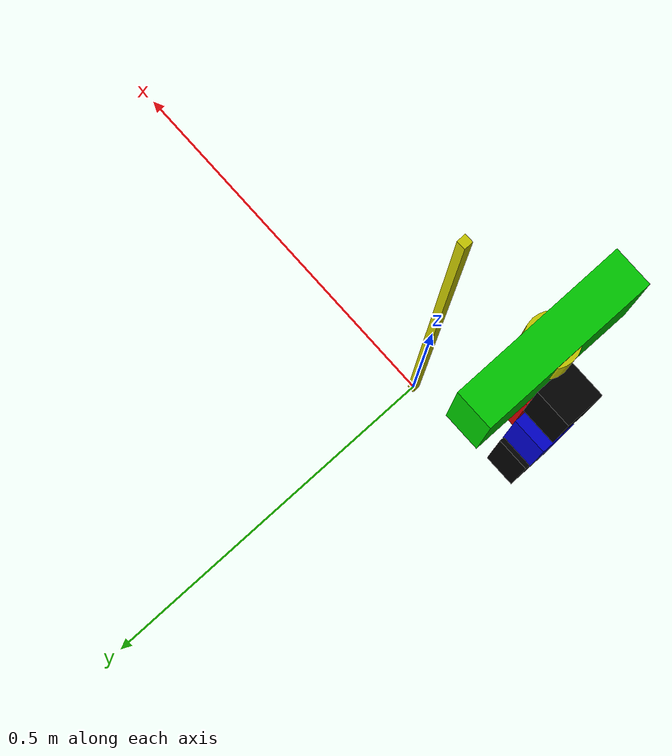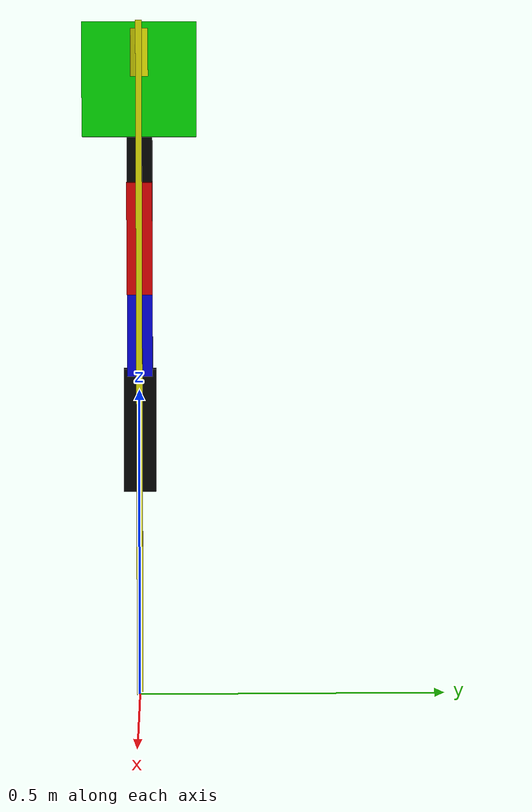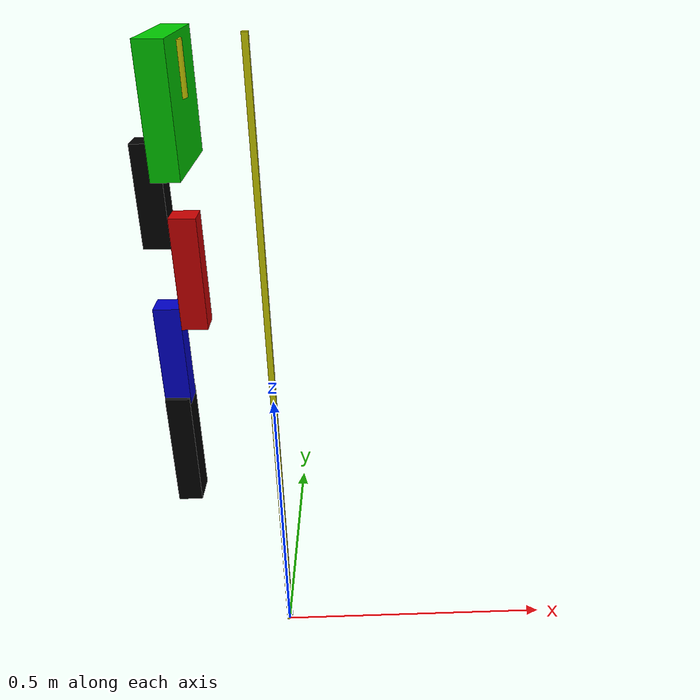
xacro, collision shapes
<?xml version="1.0"?>
<robot name="arm" xmlns:xacro="http://ros.org/wiki/xacro">

<xacro:property name="namespace" value="$(arg namespace)" />

<xacro:include filename="$(find rotors_description)/urdf/component_snippets.xacro" />

<xacro:property name="width" value="42.5e-3" />

<gazebo>
  <plugin name="gazebo_ros_control" filename="libgazebo_ros_control.so">
    <robotNamespace>/arm</robotNamespace>
    <robotSimType>gazebo_ros_control/DefaultRobotHWSim</robotSimType>
  </plugin>
</gazebo>

<xacro:property name="joint_radius" value="24e-3" />
<xacro:property name="PI" value="3.1415926535897931"/>
<xacro:property name="friction" value="1e-5" />
<xacro:property name="damping" value="2e-1" />

<material name="blue">
    <color rgba="0 0 0.8 1"/>
</material>

<material name="green">
    <color rgba="0 0.8 0 1"/>
</material>

<material name="yellow">
    <color rgba="0.8 0.8 0 1"/>
</material>

<material name="black">
    <color rgba="0 0 0 1"/>
</material>

<material name="red">
    <color rgba="0.8 0 0 1"/>
</material>

<link name="world">
	<origin rpy="0 0 0" xyz="0 0 0"/>
</link>

<joint name="fixed_joint" type="fixed">
	<parent link="world"/>
	<child link="fixed_frame"/>
	<origin rpy="0 3.1416 0" xyz="0 0 1.1"/>
</joint>

<link name="fixed_frame">

  	<visual>
		<origin rpy="0 0 0" xyz="0 0 0.55"/>
		<geometry>
		 <box size="0.01 0.01 1.1"/>
  	</geometry>
		<material name = "yellow"/>
	  </visual>

    <collision>
      <origin rpy="0 0 0" xyz="0 0 0.55"/>
      <geometry>
        <box size="0.01 0.01 1.1"/>
      </geometry>
    </collision>

    <inertial>
      <origin rpy="0 0 0" xyz="0 0 0.55"/>
      <mass value="12"/>
      <inertia
        ixx="1.2101" ixy="0.0" ixz="0.0"
        iyy="1.2101" iyz="0.0"
        izz="0.0001"/>
    </inertial>

</link>

<joint name="fixed_joint_right" type="fixed">
	<parent link="fixed_frame"/>
	<child link="base_link_right"/>
	<origin rpy="0 0 0" xyz="0.11475 0 0.009"/>
</joint>

<link name="base_link_right">
	<visual>
		<origin rpy="0 0 0" xyz="0 0 0"/>
		<geometry>
		<mesh filename="package://rotors_description/meshes/arm/base_link.stl" scale="0.001 0.001 0.001"/>
		</geometry>
		<material name = "yellow"/>
	</visual>

    <collision>
      <origin xyz="0 0 39.875e-3" rpy="0 0 0"/>
      <geometry>
        <cylinder radius="26.05e-3" length="79.75e-3"/>
      </geometry>
    </collision>

    <inertial>
      <origin xyz="-2.2068363e-3 0 3.1955704e-3" rpy="0 0 0"/>
      <mass value="0.396"/>
      <inertia
        ixx="8.1358422e-4" ixy="0.0" ixz="0.0"
        iyy="3.1455842e-4" iyz="0.0"
        izz="9.0317049e-4"/>
    </inertial>

</link>

 <joint name="Joint_shoulder_right" type="continuous">
 	<axis xyz="0 0 1"/>
	<parent link="base_link_right"/>
	<child link="Link_shoulder_right"/>
	<origin xyz="0 0 79.75e-3"/>
  <dynamics damping="${damping}" friction="${friction}"/>
</joint>

<link name="Link_shoulder_right">
	<visual>
		<origin rpy="0 0 0" xyz="0 0 0"/>
		<geometry>
		<mesh filename="package://rotors_description/meshes/arm/j0.stl" scale="0.001 0.001 0.001"/>
		</geometry>
		<material name = "green"/>
	</visual>

    <collision>
      <origin xyz="0 0 4.5368422e-3" rpy="0 0 0"/>
      <geometry>
        <box size="${width} 189e-3 189e-3"/>
      </geometry>
    </collision>

    <inertial>
      <origin xyz="0 0 4.5368422e-3" rpy="0 0 0"/>
      <mass value="1.586"/>
        <inertia
	  ixx="${1.586 / 12.0 * (189e-3*189e-3 + 189e-3*189e-3)}" ixy="0.0" ixz="0.0"
	  iyy="${1.586 / 12.0 * (width*width + 189e-3*189e-3)}" iyz="0.0"
	  izz="${1.586 / 12.0 * (width*width + 189e-3*189e-3)}"/>
    </inertial>
</link>

<joint name="Joint_1_right" type="continuous">
	<axis xyz="1 0 0"/>
	<parent link="Link_shoulder_right"/>
	<child link="Link_one_right"/>
	<origin xyz="${width} 0 85.144e-3"/>
  <dynamics damping="${damping}" friction="${friction}"/>
</joint>

<link name="Link_one_right">
	<visual>
		<origin rpy="0 0 0" xyz="0 0 24e-3"/>
		<geometry>
		<mesh filename="package://rotors_description/meshes/arm/j1.stl" scale="0.001 0.001 0.001"/>
		</geometry>
		<material name = "black"/>
	</visual>

    <collision>
      <origin xyz="0 0 56.5e-3" rpy="0 0 0"/>
      <geometry>
        <box size="${width} ${width} 161e-3"/>
      </geometry>
    </collision>

    <inertial>
      <origin xyz="0 0 5.65e-2" rpy=" 0 0 0"/>
      <mass value="0.139"/>
        <inertia
	  ixx="${0.139 / 12.0 * (width*width + 161e-3*161e-3)}" ixy="0.0" ixz="0.0"
	  iyy="${0.139 / 12.0 * (161e-3*161e-3 + width*width)}" iyz="0.0"
	  izz="${0.139 / 12.0 * (width*width + width*width)}"/>
    </inertial>
</link>

<joint name="Joint_2_right" type="continuous">
	<axis xyz="1 0 0"/>
	<parent link="Link_one_right"/>
	<child link="Link_two_right"/>
	<origin xyz="-${width} 0 0.113"/>
  <dynamics damping="${damping}" friction="${friction}"/>
</joint>

<link name="Link_two_right">
	<visual>
		<origin rpy="0 0 0" xyz="0 0 24e-3"/>
		<geometry>
		<mesh filename="package://rotors_description/meshes/arm/j2.stl" scale="0.001 0.001 0.001"/>
		</geometry>
		<material name = "red"/>
	</visual>

    <collision>
      <origin xyz="0 0 69e-3" rpy="0 0 0"/>
      <geometry>
        <box size="${width} ${width} 186e-3"/>
      </geometry>
    </collision>

        <inertial>
      <origin xyz="0 0 6.9e-2" rpy="0 0 0"/>
      <mass value="0.154"/>
        <inertia
	  ixx="${0.154 / 12.0 * (width*width + 186e-3*186e-3)}" ixy="0.0" ixz="0.0"
	  iyy="${0.154 / 12.0 * (186e-3*186e-3 + width*width)}" iyz="0.0"
	  izz="${0.154 / 12.0 * (width*width + width*width)}"/>
    </inertial>
</link>

<joint name="Joint_3_right" type="continuous">
	<axis xyz="1 0 0"/>
	<parent link="Link_two_right"/>
	<child link="Link_three_right"/>
	<origin xyz="${width} 0 0.138"/>
  <dynamics damping="${damping}" friction="${friction}"/>
</joint>

<link name="Link_three_right">
	<visual>
		<origin rpy="0 0 0" xyz="0 0 24e-3"/>
		<geometry>
		<mesh filename="package://rotors_description/meshes/arm/j3.stl" scale="0.001 0.001 0.001"/>
		</geometry>
		<material name = "blue"/>
	</visual>

    <collision>
      <origin xyz="0 0 75.1e-3" rpy="0 0 0"/>
      <geometry>
        <box size="${width}  ${width}  175e-3"/>
      </geometry>
    </collision>

    <inertial>
      <origin xyz="0 0 63e-3" rpy="0 0 0"/>
      <mass value="0.207"/>
        <inertia
	  ixx="${0.207 / 12.0 * (width*width + 175e-3*175e-3)}" ixy="0.0" ixz="0.0"
	  iyy="${0.207 / 12.0 * (175e-3*175e-3 + width*width)}" iyz="0.0"
	  izz="${0.207 / 12.0 * (width*width + width*width)}"/>
    </inertial>
</link>

<joint name="Joint_wrist_right" type="continuous">
	<axis xyz="0 0 1"/>
	<parent link="Link_three_right"/>
	<child link="Link_hand_right"/>
	<origin xyz="0 0 0.1502"/>
  <dynamics damping="${damping}" friction="${friction}"/>
</joint>

<link name="Link_hand_right">
	<visual>
		<origin rpy="0 0 0 " xyz="0 0 0"/>
		<geometry>
    <mesh filename="package://rotors_description/meshes/arm/hand_right.stl" scale="0.001 0.001 0.001"/>
    </geometry>
		<material name = "black"/>
	</visual>

    <collision>
      <origin xyz="0 0 102.556e-3" rpy="0 0 0"/>
      <geometry>
        <box size="41e-3 54e-3 205.122e-3"/>
      </geometry>
    </collision>

    <inertial>
      <origin xyz="0 0 102.5e-3" rpy="0 0 0"/>
      <mass value="0.505"/>
        <inertia
	  ixx="${0.505 / 12.0 * (width*width + 205e-3*205e-3)}" ixy="0.0" ixz="0.0"
	  iyy="${0.505 / 12.0 * (205e-3*205e-3+ width*width)}" iyz="0.0"
	  izz="${0.505 / 12.0 * (width*width + width*width)}"/>
    </inertial>
</link>

  <transmission name="tran0_right">
    <type>transmission_interface/SimpleTransmission</type>
    <joint name="Joint_shoulder_right">
      <hardwareInterface>hardware_interface/EffortJointInterface</hardwareInterface>
    </joint>
    <actuator name="motor0_right">
      <hardwareInterface>hardware_interface/EffortJointInterface</hardwareInterface>
      <mechanicalReduction>1</mechanicalReduction>
    </actuator>
  </transmission>

  <transmission name="tran1_right">
    <type>transmission_interface/SimpleTransmission</type>
    <joint name="Joint_1_right">
      <hardwareInterface>hardware_interface/EffortJointInterface</hardwareInterface>
    </joint>
    <actuator name="motor1_right">
      <hardwareInterface>hardware_interface/EffortJointInterface</hardwareInterface>
      <mechanicalReduction>1</mechanicalReduction>
    </actuator>
  </transmission>

  <transmission name="tran2_right">
    <type>transmission_interface/SimpleTransmission</type>
    <joint name="Joint_2_right">
      <hardwareInterface>hardware_interface/EffortJointInterface</hardwareInterface>
    </joint>
    <actuator name="motor2_right">
      <hardwareInterface>hardware_interface/EffortJointInterface</hardwareInterface>
      <mechanicalReduction>1</mechanicalReduction>
    </actuator>
  </transmission>

  <transmission name="tran3_right">
    <type>transmission_interface/SimpleTransmission</type>
    <joint name="Joint_3_right">
      <hardwareInterface>hardware_interface/EffortJointInterface</hardwareInterface>
    </joint>
    <actuator name="motor3_right">
      <hardwareInterface>hardware_interface/EffortJointInterface</hardwareInterface>
      <mechanicalReduction>1</mechanicalReduction>
    </actuator>
  </transmission>

    <transmission name="tran4_right">
    <type>transmission_interface/SimpleTransmission</type>
    <joint name="Joint_wrist_right">
      <hardwareInterface>hardware_interface/EffortJointInterface</hardwareInterface>
    </joint>
    <actuator name="motor4_right">
      <hardwareInterface>hardware_interface/EffortJointInterface</hardwareInterface>
      <mechanicalReduction>1</mechanicalReduction>
    </actuator>
  </transmission>

</robot>
